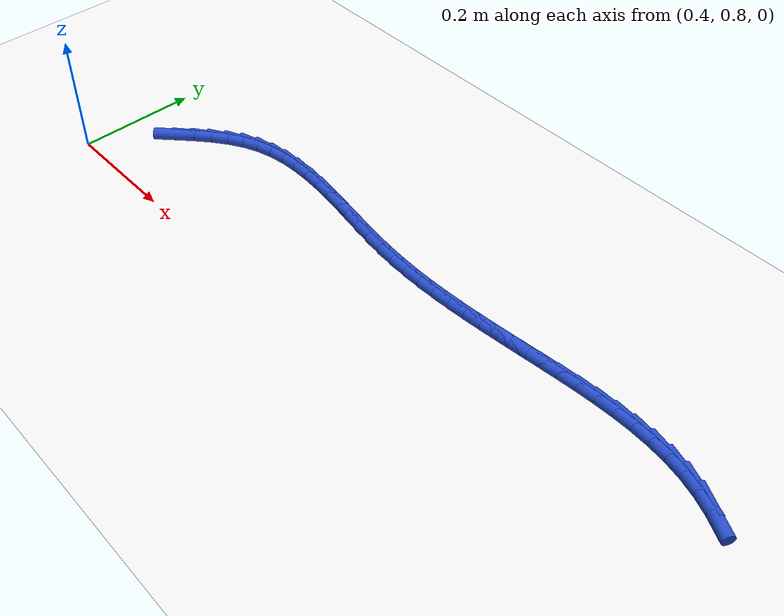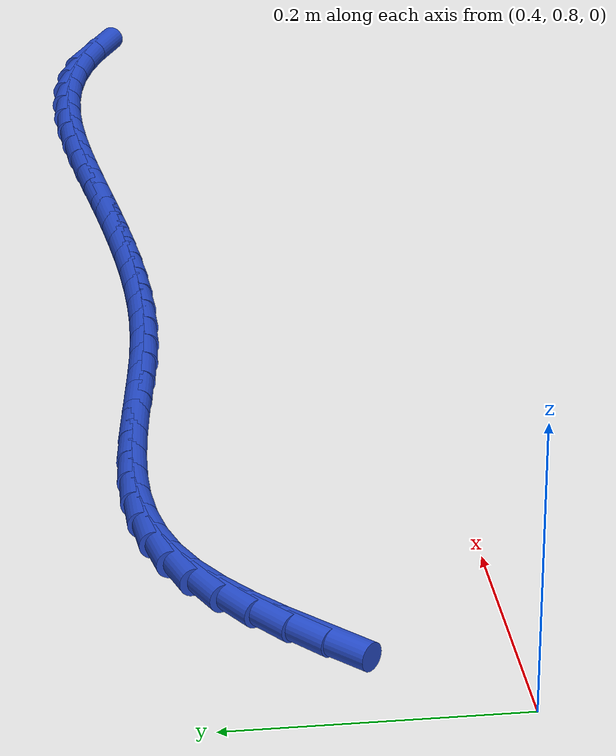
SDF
<sdf version="1.6">
 <world name="default">
  <model name="ground_plane">
   <static>1</static>
   <link name="link">
    <collision name="collision">
     <geometry><plane><normal>0 0 1</normal><size>100 100</size></plane></geometry>
     <surface><friction><ode><mu>100</mu><mu2>50</mu2></ode></friction></surface>
    </collision>
    <visual name="visual">
     <cast_shadows>0</cast_shadows>
     <geometry><plane><normal>0 0 1</normal><size>100 100</size></plane></geometry>
     <material>
      <script><uri>file://media/materials/scripts/gazebo.material</uri><name>Gazebo/WhiteGlow</name></script>
     </material>
    </visual>
   </link>
  </model>
  <model name="line">
   <link name="link_36">
    <pose>0.49051242831453784 0.9223849775506759 0.01 0 1.57 0.7647972383553288</pose>
    <collision name="collision">
     <geometry><cylinder><radius>0.01</radius><length>0.08</length></cylinder></geometry>
    </collision>
    <visual name="visual">
     <material>
      <script><name>Gazebo/Blue</name><uri>file://media/materials/scripts/gazebo.material</uri></script>
     </material>
     <geometry><cylinder><radius>0.01</radius><length>0.08</length></cylinder></geometry>
    </visual>
   </link>
   <link name="link_37">
    <pose>0.5126786847941239 0.9436562540563649 0.01 0 1.57 0.7145596531466036</pose>
    <collision name="collision">
     <geometry><cylinder><radius>0.01</radius><length>0.08</length></cylinder></geometry>
    </collision>
    <visual name="visual">
     <material>
      <script><name>Gazebo/Blue</name><uri>file://media/materials/scripts/gazebo.material</uri></script>
     </material>
     <geometry><cylinder><radius>0.01</radius><length>0.08</length></cylinder></geometry>
    </visual>
   </link>
   <link name="link_38">
    <pose>0.5353880895762421 0.9633563945547692 0.01 0 1.57 0.6417722395684741</pose>
    <collision name="collision">
     <geometry><cylinder><radius>0.01</radius><length>0.08</length></cylinder></geometry>
    </collision>
    <visual name="visual">
     <material>
      <script><name>Gazebo/Blue</name><uri>file://media/materials/scripts/gazebo.material</uri></script>
     </material>
     <geometry><cylinder><radius>0.01</radius><length>0.08</length></cylinder></geometry>
    </visual>
   </link>
   <link name="link_39">
    <pose>0.5588494078313107 0.9808890878315272 0.01 0 1.57 0.5438968007247597</pose>
    <collision name="collision">
     <geometry><cylinder><radius>0.01</radius><length>0.08</length></cylinder></geometry>
    </collision>
    <visual name="visual">
     <material>
      <script><name>Gazebo/Blue</name><uri>file://media/materials/scripts/gazebo.material</uri></script>
     </material>
     <geometry><cylinder><radius>0.01</radius><length>0.08</length></cylinder></geometry>
    </visual>
   </link>
   <link name="link_40">
    <pose>0.5832714047297484 0.995658022672276 0.01 0 1.57 0.41961008747286194</pose>
    <collision name="collision">
     <geometry><cylinder><radius>0.01</radius><length>0.08</length></cylinder></geometry>
    </collision>
    <visual name="visual">
     <material>
      <script><name>Gazebo/Blue</name><uri>file://media/materials/scripts/gazebo.material</uri></script>
     </material>
     <geometry><cylinder><radius>0.01</radius><length>0.08</length></cylinder></geometry>
    </visual>
   </link>
   <link name="link_41">
    <pose>0.6088605576240415 1.0070734705995863 0.01 0 1.57 0.2850498647237634</pose>
    <collision name="collision">
     <geometry><cylinder><radius>0.01</radius><length>0.08</length></cylinder></geometry>
    </collision>
    <visual name="visual">
     <material>
      <script><name>Gazebo/Blue</name><uri>file://media/materials/scripts/gazebo.material</uri></script>
     </material>
     <geometry><cylinder><radius>0.01</radius><length>0.08</length></cylinder></geometry>
    </visual>
   </link>
   <link name="link_42">
    <pose>0.6356881320541202 1.0149347479895159 0.01 0 1.57 0.16693370517301895</pose>
    <collision name="collision">
     <geometry><cylinder><radius>0.01</radius><length>0.08</length></cylinder></geometry>
    </collision>
    <visual name="visual">
     <material>
      <script><name>Gazebo/Blue</name><uri>file://media/materials/scripts/gazebo.material</uri></script>
     </material>
     <geometry><cylinder><radius>0.01</radius><length>0.08</length></cylinder></geometry>
    </visual>
   </link>
   <link name="link_43">
    <pose>0.6636169896949902 1.0196408115125841 0.01 0 1.57 0.06918742205419548</pose>
    <collision name="collision">
     <geometry><cylinder><radius>0.01</radius><length>0.08</length></cylinder></geometry>
    </collision>
    <visual name="visual">
     <material>
      <script><name>Gazebo/Blue</name><uri>file://media/materials/scripts/gazebo.material</uri></script>
     </material>
     <geometry><cylinder><radius>0.01</radius><length>0.08</length></cylinder></geometry>
    </visual>
   </link>
   <link name="link_44">
    <pose>0.692492201573911 1.0216418068575974 0.01 0 1.57 -0.008559141441000867</pose>
    <collision name="collision">
     <geometry><cylinder><radius>0.01</radius><length>0.08</length></cylinder></geometry>
    </collision>
    <visual name="visual">
     <material>
      <script><name>Gazebo/Blue</name><uri>file://media/materials/scripts/gazebo.material</uri></script>
     </material>
     <geometry><cylinder><radius>0.01</radius><length>0.08</length></cylinder></geometry>
    </visual>
   </link>
   <link name="link_45">
    <pose>0.7221588387181427 1.0213878797133629 0.01 0 1.57 -0.06783276782823092</pose>
    <collision name="collision">
     <geometry><cylinder><radius>0.01</radius><length>0.08</length></cylinder></geometry>
    </collision>
    <visual name="visual">
     <material>
      <script><name>Gazebo/Blue</name><uri>file://media/materials/scripts/gazebo.material</uri></script>
     </material>
     <geometry><cylinder><radius>0.01</radius><length>0.08</length></cylinder></geometry>
    </visual>
   </link>
   <link name="link_46">
    <pose>0.752461972154945 1.019329175768687 0.01 0 1.57 -0.1104265941994296</pose>
    <collision name="collision">
     <geometry><cylinder><radius>0.01</radius><length>0.08</length></cylinder></geometry>
    </collision>
    <visual name="visual">
     <material>
      <script><name>Gazebo/Blue</name><uri>file://media/materials/scripts/gazebo.material</uri></script>
     </material>
     <geometry><cylinder><radius>0.01</radius><length>0.08</length></cylinder></geometry>
    </visual>
   </link>
   <link name="link_47">
    <pose>0.7832466729115781 1.015915840712377 0.01 0 1.57 -0.13790514897232956</pose>
    <collision name="collision">
     <geometry><cylinder><radius>0.01</radius><length>0.08</length></cylinder></geometry>
    </collision>
    <visual name="visual">
     <material>
      <script><name>Gazebo/Blue</name><uri>file://media/materials/scripts/gazebo.material</uri></script>
     </material>
     <geometry><cylinder><radius>0.01</radius><length>0.08</length></cylinder></geometry>
    </visual>
   </link>
   <link name="link_48">
    <pose>0.8143580120153019 1.0115980202332393 0.01 0 1.57 -0.15138074713984573</pose>
    <collision name="collision">
     <geometry><cylinder><radius>0.01</radius><length>0.08</length></cylinder></geometry>
    </collision>
    <visual name="visual">
     <material>
      <script><name>Gazebo/Blue</name><uri>file://media/materials/scripts/gazebo.material</uri></script>
     </material>
     <geometry><cylinder><radius>0.01</radius><length>0.08</length></cylinder></geometry>
    </visual>
   </link>
   <link name="link_49">
    <pose>0.8456410604933758 1.0068258600200806 0.01 0 1.57 -0.15143177151995213</pose>
    <collision name="collision">
     <geometry><cylinder><radius>0.01</radius><length>0.08</length></cylinder></geometry>
    </collision>
    <visual name="visual">
     <material>
      <script><name>Gazebo/Blue</name><uri>file://media/materials/scripts/gazebo.material</uri></script>
     </material>
     <geometry><cylinder><radius>0.01</radius><length>0.08</length></cylinder></geometry>
    </visual>
   </link>
   <link name="link_50">
    <pose>0.8769408893730603 1.0020495057617078 0.01 0 1.57 -0.13808131413352706</pose>
    <collision name="collision">
     <geometry><cylinder><radius>0.01</radius><length>0.08</length></cylinder></geometry>
    </collision>
    <visual name="visual">
     <material>
      <script><name>Gazebo/Blue</name><uri>file://media/materials/scripts/gazebo.material</uri></script>
     </material>
     <geometry><cylinder><radius>0.01</radius><length>0.08</length></cylinder></geometry>
    </visual>
   </link>
   <link name="link_51">
    <pose>0.9081025696816147 0.9977191031469279 0.01 0 1.57 -0.11081628932290162</pose>
    <collision name="collision">
     <geometry><cylinder><radius>0.01</radius><length>0.08</length></cylinder></geometry>
    </collision>
    <visual name="visual">
     <material>
      <script><name>Gazebo/Blue</name><uri>file://media/materials/scripts/gazebo.material</uri></script>
     </material>
     <geometry><cylinder><radius>0.01</radius><length>0.08</length></cylinder></geometry>
    </visual>
   </link>
   <link name="link_52">
    <pose>0.9389713829575411 0.9942842640519602 0.01 0 1.57 -0.07350329960058424</pose>
    <collision name="collision">
     <geometry><cylinder><radius>0.01</radius><length>0.08</length></cylinder></geometry>
    </collision>
    <visual name="visual">
     <material>
      <script><name>Gazebo/Blue</name><uri>file://media/materials/scripts/gazebo.material</uri></script>
     </material>
     <geometry><cylinder><radius>0.01</radius><length>0.08</length></cylinder></geometry>
    </visual>
   </link>
   <link name="link_53">
    <pose>0.9694537086662779 0.9920396687582569 0.01 0 1.57 -0.037415986823284494</pose>
    <collision name="collision">
     <geometry><cylinder><radius>0.01</radius><length>0.08</length></cylinder></geometry>
    </collision>
    <visual name="visual">
     <material>
      <script><name>Gazebo/Blue</name><uri>file://media/materials/scripts/gazebo.material</uri></script>
     </material>
     <geometry><cylinder><radius>0.01</radius><length>0.08</length></cylinder></geometry>
    </visual>
   </link>
   <link name="link_54">
    <pose>0.9996013880215336 0.9909111369039175 0.01 0 1.57 -0.004696522407320155</pose>
    <collision name="collision">
     <geometry><cylinder><radius>0.01</radius><length>0.08</length></cylinder></geometry>
    </collision>
    <visual name="visual">
     <material>
      <script><name>Gazebo/Blue</name><uri>file://media/materials/scripts/gazebo.material</uri></script>
     </material>
     <geometry><cylinder><radius>0.01</radius><length>0.08</length></cylinder></geometry>
    </visual>
   </link>
   <link name="link_55">
    <pose>1.0294874441008635 0.9907707753398729 0.01 0 1.57 0.024236911349796126</pose>
    <collision name="collision">
     <geometry><cylinder><radius>0.01</radius><length>0.08</length></cylinder></geometry>
    </collision>
    <visual name="visual">
     <material>
      <script><name>Gazebo/Blue</name><uri>file://media/materials/scripts/gazebo.material</uri></script>
     </material>
     <geometry><cylinder><radius>0.01</radius><length>0.08</length></cylinder></geometry>
    </visual>
   </link>
   <link name="link_56">
    <pose>1.0591848999818223 0.9914906909170534 0.01 0 1.57 0.049054844252991975</pose>
    <collision name="collision">
     <geometry><cylinder><radius>0.01</radius><length>0.08</length></cylinder></geometry>
    </collision>
    <visual name="visual">
     <material>
      <script><name>Gazebo/Blue</name><uri>file://media/materials/scripts/gazebo.material</uri></script>
     </material>
     <geometry><cylinder><radius>0.01</radius><length>0.08</length></cylinder></geometry>
    </visual>
   </link>
   <link name="link_57">
    <pose>1.0887667787419666 0.9929429904863905 0.01 0 1.57 0.06951669238525317</pose>
    <collision name="collision">
     <geometry><cylinder><radius>0.01</radius><length>0.08</length></cylinder></geometry>
    </collision>
    <visual name="visual">
     <material>
      <script><name>Gazebo/Blue</name><uri>file://media/materials/scripts/gazebo.material</uri></script>
     </material>
     <geometry><cylinder><radius>0.01</radius><length>0.08</length></cylinder></geometry>
    </visual>
   </link>
   <link name="link_58">
    <pose>1.118306103458851 0.9949997808988147 0.01 0 1.57 0.08546616097080703</pose>
    <collision name="collision">
     <geometry><cylinder><radius>0.01</radius><length>0.08</length></cylinder></geometry>
    </collision>
    <visual name="visual">
     <material>
      <script><name>Gazebo/Blue</name><uri>file://media/materials/scripts/gazebo.material</uri></script>
     </material>
     <geometry><cylinder><radius>0.01</radius><length>0.08</length></cylinder></geometry>
    </visual>
   </link>
   <link name="link_59">
    <pose>1.1478758972100318 0.997533169005257 0.01 0 1.57 0.09682381098356786</pose>
    <collision name="collision">
     <geometry><cylinder><radius>0.01</radius><length>0.08</length></cylinder></geometry>
    </collision>
    <visual name="visual">
     <material>
      <script><name>Gazebo/Blue</name><uri>file://media/materials/scripts/gazebo.material</uri></script>
     </material>
     <geometry><cylinder><radius>0.01</radius><length>0.08</length></cylinder></geometry>
    </visual>
   </link>
   <link name="link_60">
    <pose>1.177549183073063 1.0004152616566482 0.01 0 1.57 0.10357856573783551</pose>
    <collision name="collision">
     <geometry><cylinder><radius>0.01</radius><length>0.08</length></cylinder></geometry>
    </collision>
    <visual name="visual">
     <material>
      <script><name>Gazebo/Blue</name><uri>file://media/materials/scripts/gazebo.material</uri></script>
     </material>
     <geometry><cylinder><radius>0.01</radius><length>0.08</length></cylinder></geometry>
    </visual>
   </link>
   <link name="link_61">
    <pose>1.207398984125502 1.0035181657039196 0.01 0 1.57 0.10577950151761183</pose>
    <collision name="collision">
     <geometry><cylinder><radius>0.01</radius><length>0.08</length></cylinder></geometry>
    </collision>
    <visual name="visual">
     <material>
      <script><name>Gazebo/Blue</name><uri>file://media/materials/scripts/gazebo.material</uri></script>
     </material>
     <geometry><cylinder><radius>0.01</radius><length>0.08</length></cylinder></geometry>
    </visual>
   </link>
   <link name="link_62">
    <pose>1.2374983227003518 1.006713987307407 0.01 0 1.57 0.10248181696850574</pose>
    <collision name="collision">
     <geometry><cylinder><radius>0.01</radius><length>0.08</length></cylinder></geometry>
    </collision>
    <visual name="visual">
     <material>
      <script><name>Gazebo/Blue</name><uri>file://media/materials/scripts/gazebo.material</uri></script>
     </material>
     <geometry><cylinder><radius>0.01</radius><length>0.08</length></cylinder></geometry>
    </visual>
   </link>
   <link name="link_63">
    <pose>1.267881184285906 1.0098386246925761 0.01 0 1.57 0.08994871352086782</pose>
    <collision name="collision">
     <geometry><cylinder><radius>0.01</radius><length>0.08</length></cylinder></geometry>
    </collision>
    <visual name="visual">
     <material>
      <script><name>Gazebo/Blue</name><uri>file://media/materials/scripts/gazebo.material</uri></script>
     </material>
     <geometry><cylinder><radius>0.01</radius><length>0.08</length></cylinder></geometry>
    </visual>
   </link>
   <link name="link_64">
    <pose>1.298437740697516 1.012594584256188 0.01 0 1.57 0.06721661303895507</pose>
    <collision name="collision">
     <geometry><cylinder><radius>0.01</radius><length>0.08</length></cylinder></geometry>
    </collision>
    <visual name="visual">
     <material>
      <script><name>Gazebo/Blue</name><uri>file://media/materials/scripts/gazebo.material</uri></script>
     </material>
     <geometry><cylinder><radius>0.01</radius><length>0.08</length></cylinder></geometry>
    </visual>
   </link>
   <link name="link_65">
    <pose>1.3290250537468487 1.0146536617966984 0.01 0 1.57 0.03391600854188288</pose>
    <collision name="collision">
     <geometry><cylinder><radius>0.01</radius><length>0.08</length></cylinder></geometry>
    </collision>
    <visual name="visual">
     <material>
      <script><name>Gazebo/Blue</name><uri>file://media/materials/scripts/gazebo.material</uri></script>
     </material>
     <geometry><cylinder><radius>0.01</radius><length>0.08</length></cylinder></geometry>
    </visual>
   </link>
   <link name="link_66">
    <pose>1.35950018524557 1.0156876531125634 0.01 0 1.57 -0.010565423728079532</pose>
    <collision name="collision">
     <geometry><cylinder><radius>0.01</radius><length>0.08</length></cylinder></geometry>
    </collision>
    <visual name="visual">
     <material>
      <script><name>Gazebo/Blue</name><uri>file://media/materials/scripts/gazebo.material</uri></script>
     </material>
     <geometry><cylinder><radius>0.01</radius><length>0.08</length></cylinder></geometry>
    </visual>
   </link>
   <link name="link_67">
    <pose>1.3897201970053452 1.0153683540022393 0.01 0 1.57 -0.06699090916173436</pose>
    <collision name="collision">
     <geometry><cylinder><radius>0.01</radius><length>0.08</length></cylinder></geometry>
    </collision>
    <visual name="visual">
     <material>
      <script><name>Gazebo/Blue</name><uri>file://media/materials/scripts/gazebo.material</uri></script>
     </material>
     <geometry><cylinder><radius>0.01</radius><length>0.08</length></cylinder></geometry>
    </visual>
   </link>
   <link name="link_68">
    <pose>1.4195421508378416 1.0133675602641823 0.01 0 1.57 -0.13611892987582064</pose>
    <collision name="collision">
     <geometry><cylinder><radius>0.01</radius><length>0.08</length></cylinder></geometry>
    </collision>
    <visual name="visual">
     <material>
      <script><name>Gazebo/Blue</name><uri>file://media/materials/scripts/gazebo.material</uri></script>
     </material>
     <geometry><cylinder><radius>0.01</radius><length>0.08</length></cylinder></geometry>
    </visual>
   </link>
   <link name="link_69">
    <pose>1.4488231085547247 1.0093570676968484 0.01 0 1.57 -0.2184523855704861</pose>
    <collision name="collision">
     <geometry><cylinder><radius>0.01</radius><length>0.08</length></cylinder></geometry>
    </collision>
    <visual name="visual">
     <material>
      <script><name>Gazebo/Blue</name><uri>file://media/materials/scripts/gazebo.material</uri></script>
     </material>
     <geometry><cylinder><radius>0.01</radius><length>0.08</length></cylinder></geometry>
    </visual>
   </link>
   <link name="link_70">
    <pose>1.4774201319676603 1.0030086720986942 0.01 0 1.57 -0.3134145112203563</pose>
    <collision name="collision">
     <geometry><cylinder><radius>0.01</radius><length>0.08</length></cylinder></geometry>
    </collision>
    <visual name="visual">
     <material>
      <script><name>Gazebo/Blue</name><uri>file://media/materials/scripts/gazebo.material</uri></script>
     </material>
     <geometry><cylinder><radius>0.01</radius><length>0.08</length></cylinder></geometry>
    </visual>
   </link>
   <link name="link_71">
    <pose>1.5051936838464097 0.9940073607158068 0.01 0 1.57 -0.4096489545835001</pose>
    <collision name="collision">
     <geometry><cylinder><radius>0.01</radius><length>0.08</length></cylinder></geometry>
    </collision>
    <visual name="visual">
     <material>
      <script><name>Gazebo/Blue</name><uri>file://media/materials/scripts/gazebo.material</uri></script>
     </material>
     <geometry><cylinder><radius>0.01</radius><length>0.08</length></cylinder></geometry>
    </visual>
   </link>
   <link name="link_72">
    <pose>1.532080214059043 0.9823328553367062 0.01 0 1.57 -0.49609090253793314</pose>
    <collision name="collision">
     <geometry><cylinder><radius>0.01</radius><length>0.08</length></cylinder></geometry>
    </collision>
    <visual name="visual">
     <material>
      <script><name>Gazebo/Blue</name><uri>file://media/materials/scripts/gazebo.material</uri></script>
     </material>
     <geometry><cylinder><radius>0.01</radius><length>0.08</length></cylinder></geometry>
    </visual>
   </link>
  </model>
 </world>
</sdf>
